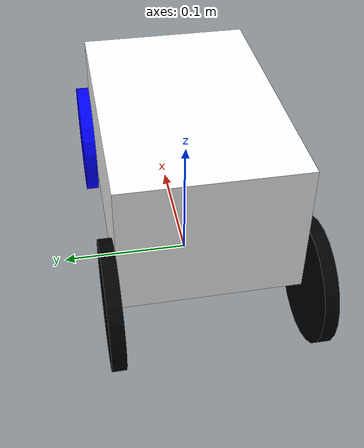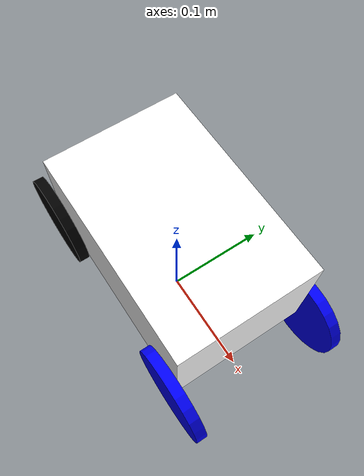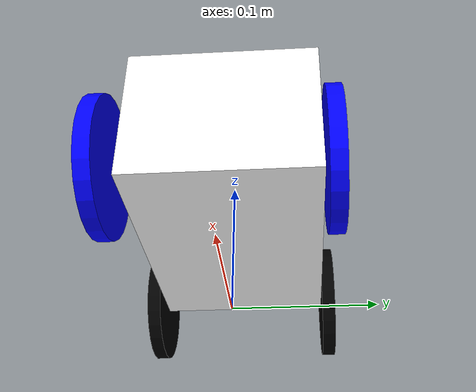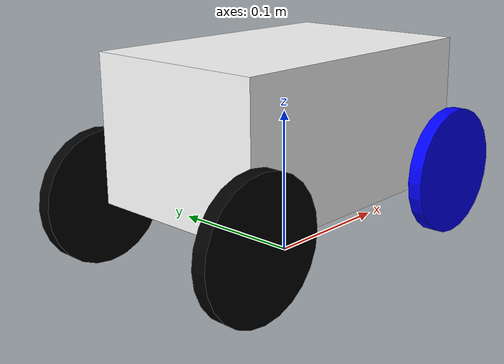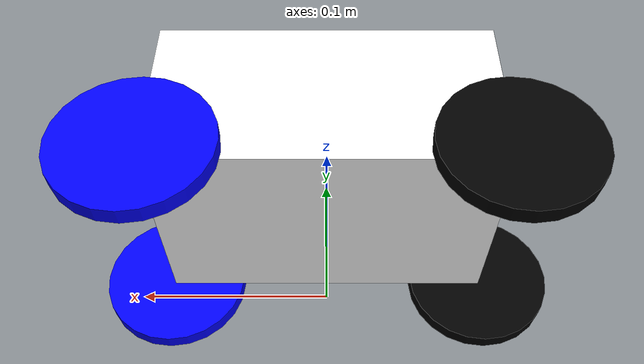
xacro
<robot xmlns:xacro="http://www.ros.org/wiki/xacro">

    <!-- Import the inertial macros -->
    <xacro:include filename="inertial_macros.xacro"/>

    <!-- COLOR NAME  -->
    <material name="white">
        <color rgba="1 1 1 1" />
    </material>
    <material name="black">
        <color rgba="0 0 0 1"/>
    </material>
    <material name="blue">
        <color rgba="0 0 1 1"/>
    </material>
    <material name="red">
        <color rgba="1 0 0 1"/>
    </material>

    <!-- base link -->
    <link name="base_link"/>

    <!-- chassis link -->
    <joint name="chassis_joint" type="fixed">
        <origin xyz="0.0 0.0 0.095" rpy="0.0 0.0 0.0"/>
        <parent link="base_link"/>
        <child link="chassis"/>
    </joint>

    <link name="chassis">
        <visual name="">
            <origin xyz="0.0 0.0 0.0" rpy="0.0 0.0 0.0"/>
            <geometry>
                <box size="0.20 0.13 0.1"/>
            </geometry>
            <material name="white"/>
        </visual>
        <collision>
            <origin xyz="0.0 0.0 0.0" rpy="0.0 0.0 0.0"/>
            <geometry>
                <box size="0.20 0.13 0.1"/>
            </geometry>
        </collision>
        <xacro:inertial_box mass="3.0" x="0.13" y="0.2" z="0.1">
            <origin xyz="0.0 0.0 0.0" rpy="0 0 0"/>
        </xacro:inertial_box>
    </link>

    <gazebo reference="chassis">
        <material>Gazebo/White</material>
    </gazebo>

    <!-- front left wheel -->
    <link name="front_left_wheel_joint_link">
        <inertial>
            <origin xyz="0.0 0.0 0.0" rpy="0.0 0.0 0.0"/>
            <mass value="0.1"/>
            <inertia ixx="0.01" ixy="0.0" ixz="0.0" iyy="0.01" iyz="0.0" izz="0.01"/>
        </inertial>
    </link>

    <joint name="front_left_steering_joint" type="revolute">
        <origin xyz="0.10 0.07 -0.045" rpy="0.0 0.0 0.0"/>
        <parent link="chassis"/>
        <child link="front_left_wheel_joint_link"/>
        <axis xyz="0.0 0.0 1.0"/>
        <limit lower="-0.7854" upper="0.7854" effort="0.0" velocity="0.0"/>
    </joint>

    <link name="front_left_wheel_link">
        <inertial>
            <origin xyz="0.0 0.0 0.0" rpy="0.0 0.0 0.0"/>
            <mass value="0.1"/>
            <inertia ixx="0.01" ixy="0.0" ixz="0.0" iyy="0.01" iyz="0.0" izz="0.01"/>
        </inertial>
        <visual name="">
            <origin xyz="0.0 0.0 0.0" rpy="0.0 0.0 0.0"/>
            <geometry>
                <cylinder radius="0.045" length="0.01"/>
            </geometry>
            <material name="blue"/>
        </visual>
        <collision>
            <origin xyz="0.0 0.0 0.0" rpy="0.0 0.0 0.0"/>
            <geometry>
                <cylinder radius="0.045" length="0.01"/>
            </geometry>
        </collision>
        <xacro:inertial_cylinder mass="0.1" length="0.01" radius="0.045">
            <origin xyz="0 0 0" rpy="0 0 0"/>
        </xacro:inertial_cylinder>
    </link>

    <joint name="front_left_wheel" type="continuous">
        <origin xyz="0.0 0.0 0.0" rpy="-1.57 0.0 0.0"/>
        <parent link="front_left_wheel_joint_link"/>
        <child link="front_left_wheel_link"/>
        <axis xyz="0.0 0.0 1.0"/>
    </joint>

    <gazebo reference="front_left_wheel_link">
        <material>Gazebo/Blue</material>
    </gazebo>

    <!-- front right wheel -->
    <link name="front_right_wheel_joint_link">
        <inertial>
            <origin xyz="0.0 0.0 0.0" rpy="0.0 0.0 0.0"/>
            <mass value="0.1"/>
            <inertia ixx="0.01" ixy="0.0" ixz="0.0" iyy="0.01" iyz="0.0" izz="0.01"/>
        </inertial>
    </link>

    <joint name="front_right_steering_joint" type="revolute">
        <origin xyz="0.10 -0.07 -0.045" rpy="0.0 0.0 0.0"/>
        <parent link="chassis"/>
        <child link="front_right_wheel_joint_link"/>
        <axis xyz="0.0 0.0 1.0"/>
        <limit lower="-0.7854" upper="0.7854" effort="0.0" velocity="0.0"/>
    </joint>

    <link name="front_right_wheel_link">
        <inertial>
            <origin xyz="0.0 0.0 0.0" rpy="0.0 0.0 0.0"/>
            <mass value="0.1"/>
            <inertia ixx="0.01" ixy="0.0" ixz="0.0" iyy="0.01" iyz="0.0" izz="0.01"/>
        </inertial>
        <visual name="">
            <origin xyz="0.0 0.0 0.0" rpy="0.0 0.0 0.0"/>
            <geometry>
                <cylinder radius="0.045" length="0.01"/>
            </geometry>
            <material name="blue"/>
        </visual>
        <collision>
            <origin xyz="0.0 0.0 0.0" rpy="0.0 0.0 0.0"/>
            <geometry>
                <cylinder radius="0.045" length="0.01"/>
            </geometry>
        </collision>
        <xacro:inertial_cylinder mass="0.1" length="0.01" radius="0.045">
            <origin xyz="0 0 0" rpy="0 0 0"/>
        </xacro:inertial_cylinder>
    </link>

    <joint name="front_right_wheel" type="continuous">
        <origin xyz="0.0 0.0 0.0" rpy="-1.57 0.0 0.0"/>
        <parent link="front_right_wheel_joint_link"/>
        <child link="front_right_wheel_link"/>
        <axis xyz="0.0 0.0 1.0"/>
    </joint>

    <gazebo reference="front_right_wheel_link">
        <material>Gazebo/Blue</material>
    </gazebo>

    <!-- back left wheel -->
    <joint name="back_left_wheel" type="continuous">
        <origin xyz="-0.10 0.07 -0.045" rpy="-1.57 0.0 0.0"/>
        <parent link="chassis"/>
        <child link="back_left_wheel_link"/>
        <axis xyz="0.0 0.0 1.0"/>
    </joint>

    <link name="back_left_wheel_link">
        <inertial>
            <origin xyz="0.0 0.0 0.0" rpy="0.0 0.0 0.0"/>
            <mass value="0.1"/>
            <inertia ixx="0.01" ixy="0.0" ixz="0.0" iyy="0.01" iyz="0.0" izz="0.01"/>
        </inertial>
        <visual name="">
            <origin xyz="0.0 0.0 0.0" rpy="0.0 0.0 0.0"/>
            <geometry>
                <cylinder radius="0.045" length="0.01"/>
            </geometry>
            <material name="black"/>
        </visual>
        <collision>
            <origin xyz="0.0 0.0 0.0" rpy="0.0 0.0 0.0"/>
            <geometry>
                <cylinder radius="0.045" length="0.01"/>
            </geometry>
        </collision>
        <xacro:inertial_cylinder mass="0.1" length="0.01" radius="0.045">
            <origin xyz="0 0 0" rpy="0 0 0"/>
        </xacro:inertial_cylinder>
    </link>

    <gazebo reference="back_left_wheel_link">
        <material>Gazebo/Black</material>
    </gazebo>

    <!-- back right wheel -->
    <joint name="back_right_wheel" type="continuous">
        <origin xyz="-0.10 -0.07 -0.045" rpy="-1.57 0.0 0.0"/>
        <parent link="chassis"/>
        <child link="back_right_wheel_link"/>
        <axis xyz="0.0 0.0 1.0"/>
        <limit lower="0.0" upper="0.0" effort="0.0" velocity="0.0"/>
    </joint>

    <link name="back_right_wheel_link">
        <inertial>
            <origin xyz="0.0 0.0 0.0" rpy="0.0 0.0 0.0"/>
            <mass value="0.1"/>
            <inertia ixx="0.01" ixy="0.0" ixz="0.0" iyy="0.01" iyz="0.0" izz="0.01"/>
        </inertial>
        <visual name="">
            <origin xyz="0.0 0.0 0.0" rpy="0.0 0.0 0.0"/>
            <geometry>
                <cylinder radius="0.045" length="0.01"/>
            </geometry>
            <material name="black"/>
        </visual>
        <collision>
            <origin xyz="0.0 0.0 0.0" rpy="0.0 0.0 0.0"/>
            <geometry>
                <cylinder radius="0.045" length="0.01"/>
            </geometry>
        </collision>
        <xacro:inertial_cylinder mass="0.1" length="0.01" radius="0.045">
            <origin xyz="0 0 0" rpy="0 0 0"/>
        </xacro:inertial_cylinder>
    </link>

    <gazebo reference="back_right_wheel_link">
        <material>Gazebo/Black</material>
    </gazebo>

</robot>
